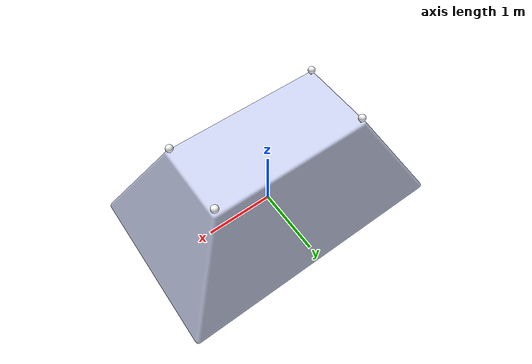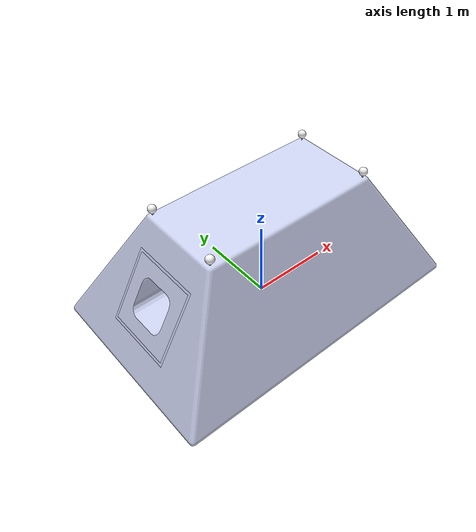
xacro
<?xml version="1.0"?>
<robot
  name="base" xmlns:xacro="http://www.ros.org/wiki/xacro">

  <xacro:include filename="$(find base)/urdf/materials.xacro" />
  <xacro:include filename="$(find base)/urdf/base.gazebo" />
  <link
    name="base_link">
    <inertial>
      <origin
        xyz="0.0336838343452882 -1.61851849854105E-10 0.584506925721933"
        rpy="0 0 0" />
      <mass
        value="65983.2189639755" />
      <inertia
        ixx="33469.0667415686"
        ixy="0.000109399065291687"
        ixz="-388.725781780484"
        iyy="72264.7980558923"
        iyz="-0.000102203871250873"
        izz="83289.7207381633" />
    </inertial>
    <visual>
      <origin
        xyz="0 0 0"
        rpy="0 0 0" />
      <geometry>
        <mesh
          filename="package://base/meshes/base_link.STL" />
      </geometry>
      <material
        name="blue">
        <color
          rgba="0.792156862745098 0.819607843137255 0.933333333333333 1" />
      </material>
    </visual>
    <collision>
      <origin
        xyz="0 0 0"
        rpy="0 0 0" />
      <geometry>
        <mesh
          filename="package://base/meshes/base_link.STL" />
      </geometry>
    </collision>
  </link>
  <link
    name="Front1_Link">
    <inertial>
      <origin
        xyz="0 0.05 0"
        rpy="0 0 0" />
      <mass
        value="0.5236" />
      <inertia
        ixx="0.0005236"
        ixy="0"
        ixz="0"
        iyy="0.0005236"
        iyz="0"
        izz="0.0005236" />
    </inertial>
    <visual>
      <origin
        xyz="0 0 0"
        rpy="0 0 0" />
      <geometry>
        <mesh
          filename="package://base/meshes/Front1_Link.STL" />
      </geometry>
      <material
        name="green">
        <color
          rgba="1 1 1 1" />
      </material>
    </visual>
    <collision>
      <origin
        xyz="0 0 0"
        rpy="0 0 0" />
      <geometry>
        <mesh
          filename="package://base/meshes/Front1_Link.STL" />
      </geometry>
    </collision>
  </link>
  <joint
    name="Front1_joint"
    type="fixed">
    <origin
      xyz="-1.084 0.50054 1.528"
      rpy="1.5708 -2.2681E-18 -0.03705" />
    <parent
      link="base_link" />
    <child
      link="Front1_Link" />
    <axis
      xyz="0 0 0" />
  </joint>
  <link
    name="Front2_Link">
    <inertial>
      <origin
        xyz="0 0.05 1.1102E-16"
        rpy="0 0 0" />
      <mass
        value="0.5236" />
      <inertia
        ixx="0.0005236"
        ixy="0"
        ixz="0"
        iyy="0.0005236"
        iyz="0"
        izz="0.0005236" />
    </inertial>
    <visual>
      <origin
        xyz="0 0 0"
        rpy="0 0 0" />
      <geometry>
        <mesh
          filename="package://base/meshes/Front2_Link.STL" />
      </geometry>
      <material
        name="green">
        <color
          rgba="1 1 1 1" />
      </material>
    </visual>
    <collision>
      <origin
        xyz="0 0 0"
        rpy="0 0 0" />
      <geometry>
        <mesh
          filename="package://base/meshes/Front2_Link.STL" />
      </geometry>
    </collision>
  </link>
  <joint
    name="Front2_joint"
    type="fixed">
    <origin
      xyz="-1.084 -0.50054 1.528"
      rpy="1.5708 0 0" />
    <parent
      link="base_link" />
    <child
      link="Front2_Link" />
    <axis
      xyz="0 0 0" />
  </joint>
  <link
    name="Back1_Link">
    <inertial>
      <origin
        xyz="0 0.05 -1.1102E-16"
        rpy="0 0 0" />
      <mass
        value="0.5236" />
      <inertia
        ixx="0.0005236"
        ixy="0"
        ixz="1.3553E-20"
        iyy="0.0005236"
        iyz="0"
        izz="0.0005236" />
    </inertial>
    <visual>
      <origin
        xyz="0 0 0"
        rpy="0 0 0" />
      <geometry>
        <mesh
          filename="package://base/meshes/Back1_Link.STL" />
      </geometry>
      <material
        name="orange">
        <color
          rgba="1 1 1 1" />
      </material>
    </visual>
    <collision>
      <origin
        xyz="0 0 0"
        rpy="0 0 0" />
      <geometry>
        <mesh
          filename="package://base/meshes/Back1_Link.STL" />
      </geometry>
    </collision>
  </link>
  <joint
    name="Back1_joint"
    type="fixed">
    <origin
      xyz="1.084 0.50054 1.528"
      rpy="1.5708 7.4498E-18 0.12197" />
    <parent
      link="base_link" />
    <child
      link="Back1_Link" />
    <axis
      xyz="0 0 0" />
  </joint>
  <link
    name="Back2_Link">
    <inertial>
      <origin
        xyz="0 0.05 1.1102E-16"
        rpy="0 0 0" />
      <mass
        value="0.5236" />
      <inertia
        ixx="0.0005236"
        ixy="0"
        ixz="0"
        iyy="0.0005236"
        iyz="0"
        izz="0.0005236" />
    </inertial>
    <visual>
      <origin
        xyz="0 0 0"
        rpy="0 0 0" />
      <geometry>
        <mesh
          filename="package://base/meshes/Back2_Link.STL" />
      </geometry>
      <material
        name="purple">
        <color
          rgba="1 1 1 1" />
      </material>
    </visual>
    <collision>
      <origin
        xyz="0 0 0"
        rpy="0 0 0" />
      <geometry>
        <mesh
          filename="package://base/meshes/Back2_Link.STL" />
      </geometry>
    </collision>
  </link>
  <joint
    name="Back2_joint"
    type="fixed">
    <origin
      xyz="1.084 -0.50054 1.528"
      rpy="1.5708 -3.9421E-18 -0.064426" />
    <parent
      link="base_link" />
    <child
      link="Back2_Link" />
    <axis
      xyz="0 0 0" />
  </joint>
  <link
    name="Marker_Link">
    <inertial>
      <origin
        xyz="1.462E-15 -0.64552 -0.23515"
        rpy="0 0 0" />
      <mass
        value="37.502" />
      <inertia
        ixx="3.9461"
        ixy="1.1471E-14"
        ixz="-1.1054E-15"
        iyy="5.6092"
        iyz="0.84562"
        izz="7.5218" />
    </inertial>
    <visual>
      <origin
        xyz="0 0 0"
        rpy="0 0 0" />
      <geometry>
        <mesh
          filename="package://base/meshes/Marker_Link.STL" />
      </geometry>
      <material
        name="">
        <color
          rgba="0.79216 0.81961 0.93333 1" />
      </material>
    </visual>
    <collision>
      <origin
        xyz="0 0 0"
        rpy="0 0 0" />
      <geometry>
        <mesh
          filename="package://base/meshes/Marker_Link.STL" />
      </geometry>
    </collision>
  </link>
  <joint
    name="Marker_joint"
    type="fixed">
    <origin
      xyz="-1.157 0 0"
      rpy="-1.5708 -6.123E-17 -1.5708" />
    <parent
      link="base_link" />
    <child
      link="Marker_Link" />
    <axis
      xyz="0 0 0" />
  </joint>
</robot>
